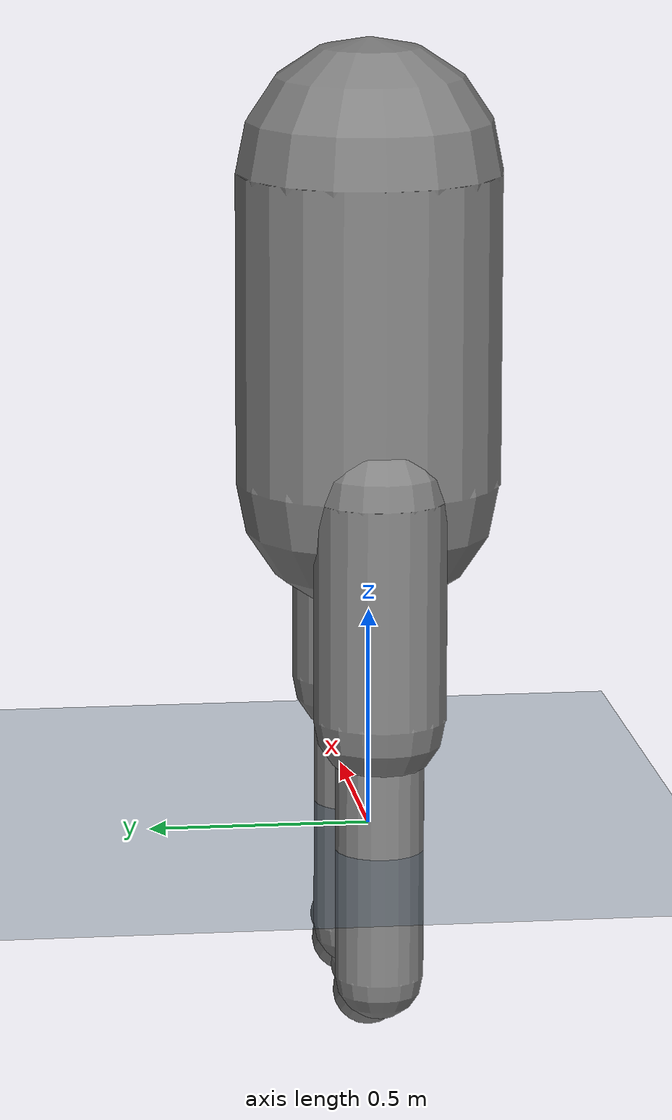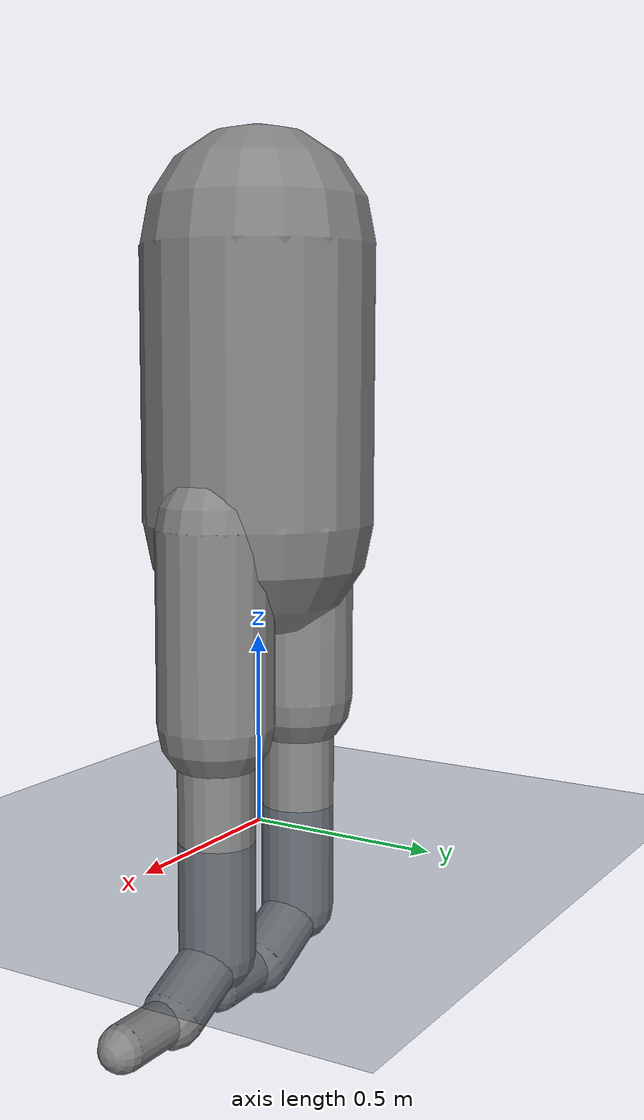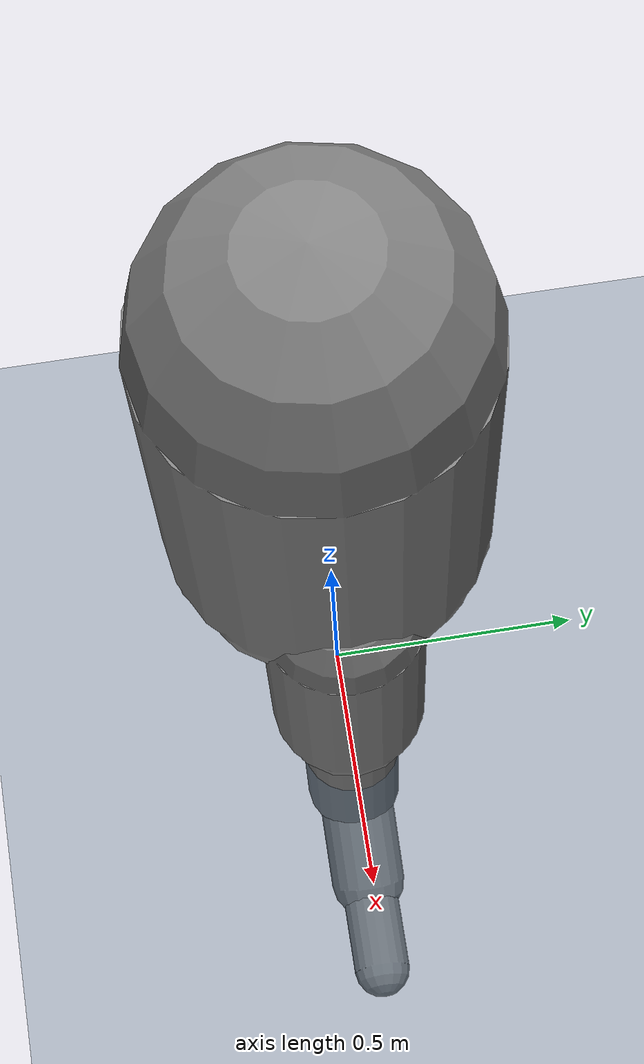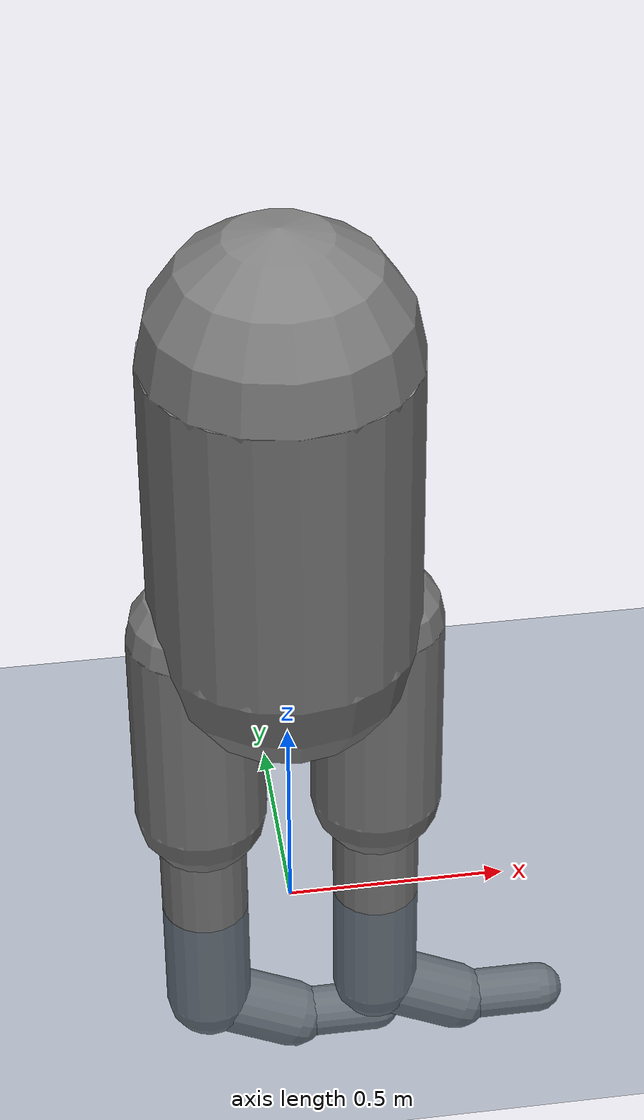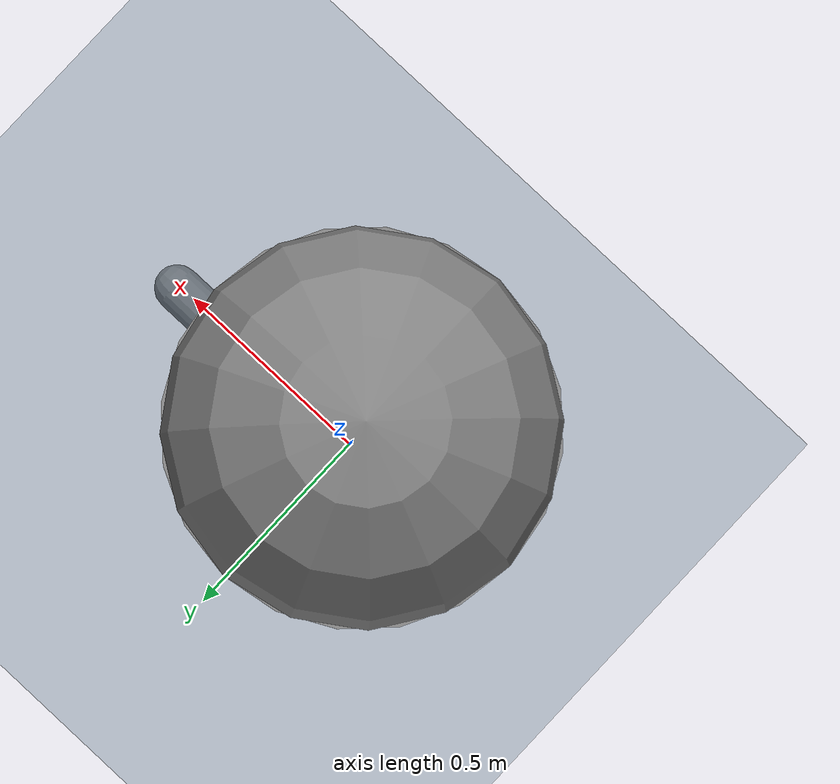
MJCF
<mujoco model="T‑Rex">
  <compiler angle="degree" coordinate="local" inertiafromgeom="true"/>
  <default>
    <joint limited="true" damping="1" armature="0.1"/>
    <geom conaffinity="1" condim="3" friction="1 0.5 0.5" margin="0.01" solref="0.02 1"/>
  </default>
  <worldbody>
    <light directional="true" diffuse="0.8 0.8 0.8" pos="0 0 5" dir="0 0 -1"/>
    <geom type="plane" size="50 50 0.1" rgba="0.2 0.3 0.4 1"/>
    <body name="torso" pos="0 0 1.5">
      <camera name="track" mode="track" pos="0 -5 2" xyaxes="1 0 0 0 1 0"/>
      <joint type="free"/>
      <geom name="torso_geom" type="capsule" fromto="0 0 0 0 0 -0.7" size="0.3"/>

      <!-- Left Leg -->
      <body name="left_thigh" pos="0.2 0 -0.7">
        <joint name="left_hip" type="hinge" axis="0 1 0" range="-90 45"/>
        <geom name="left_thigh_geom" type="capsule" fromto="0 0 0 0 0 -0.5" size="0.15"/>
        <body name="left_shin" pos="0 0 -0.5">
          <joint name="left_knee" type="hinge" axis="0 1 0" range="-160 0"/>
          <geom name="left_shin_geom" type="capsule" fromto="0 0 0 0 0 -0.6" size="0.1"/>
          <body name="left_foot" pos="0 0 -0.6">
            <joint name="left_ankle" type="hinge" axis="0 1 0" range="-45 45"/>
            <geom name="left_foot_geom" type="capsule" fromto="0 0 0 0.2 0 -0.1" size="0.08"/>
            <body name="left_toe" pos="0.2 0 -0.1">
              <joint name="left_toe_joint" type="hinge" axis="0 1 0" range="-20 45"/>
              <geom name="left_toe_geom" type="capsule" fromto="0 0 0 0.2 0 0" size="0.06"/>
            </body>
          </body>
        </body>
      </body>

      <!-- Right Leg -->
      <body name="right_thigh" pos="-0.2 0 -0.7">
        <joint name="right_hip" type="hinge" axis="0 1 0" range="-90 45"/>
        <geom name="right_thigh_geom" type="capsule" fromto="0 0 0 0 0 -0.5" size="0.15"/>
        <body name="right_shin" pos="0 0 -0.5">
          <joint name="right_knee" type="hinge" axis="0 1 0" range="-160 0"/>
          <geom name="right_shin_geom" type="capsule" fromto="0 0 0 0 0 -0.6" size="0.1"/>
          <body name="right_foot" pos="0 0 -0.6">
            <joint name="right_ankle" type="hinge" axis="0 1 0" range="-45 45"/>
            <geom name="right_foot_geom" type="capsule" fromto="0 0 0 0.2 0 -0.1" size="0.08"/>
            <body name="right_toe" pos="0.2 0 -0.1">
              <joint name="right_toe_joint" type="hinge" axis="0 1 0" range="-20 45"/>
              <geom name="right_toe_geom" type="capsule" fromto="0 0 0 0.2 0 0" size="0.06"/>
            </body>
          </body>
        </body>
      </body>

    </body>
  </worldbody>

  <actuator>
    <motor name="left_hip" joint="left_hip" gear="120"/>
    <motor name="left_knee" joint="left_knee" gear="120"/>
    <motor name="left_ankle" joint="left_ankle" gear="120"/>
    <motor name="left_toe" joint="left_toe_joint" gear="120"/>
    <motor name="right_hip" joint="right_hip" gear="120"/>
    <motor name="right_knee" joint="right_knee" gear="120"/>
    <motor name="right_ankle" joint="right_ankle" gear="120"/>
    <motor name="right_toe" joint="right_toe_joint" gear="120"/>
  </actuator>
</mujoco>
